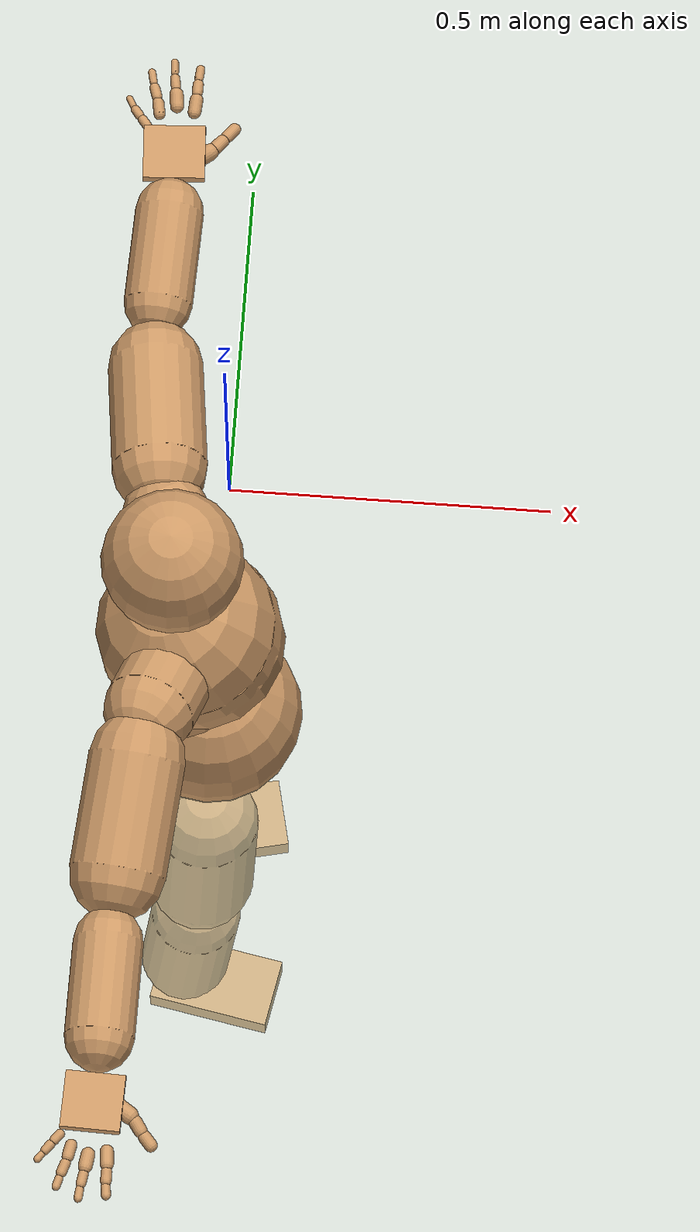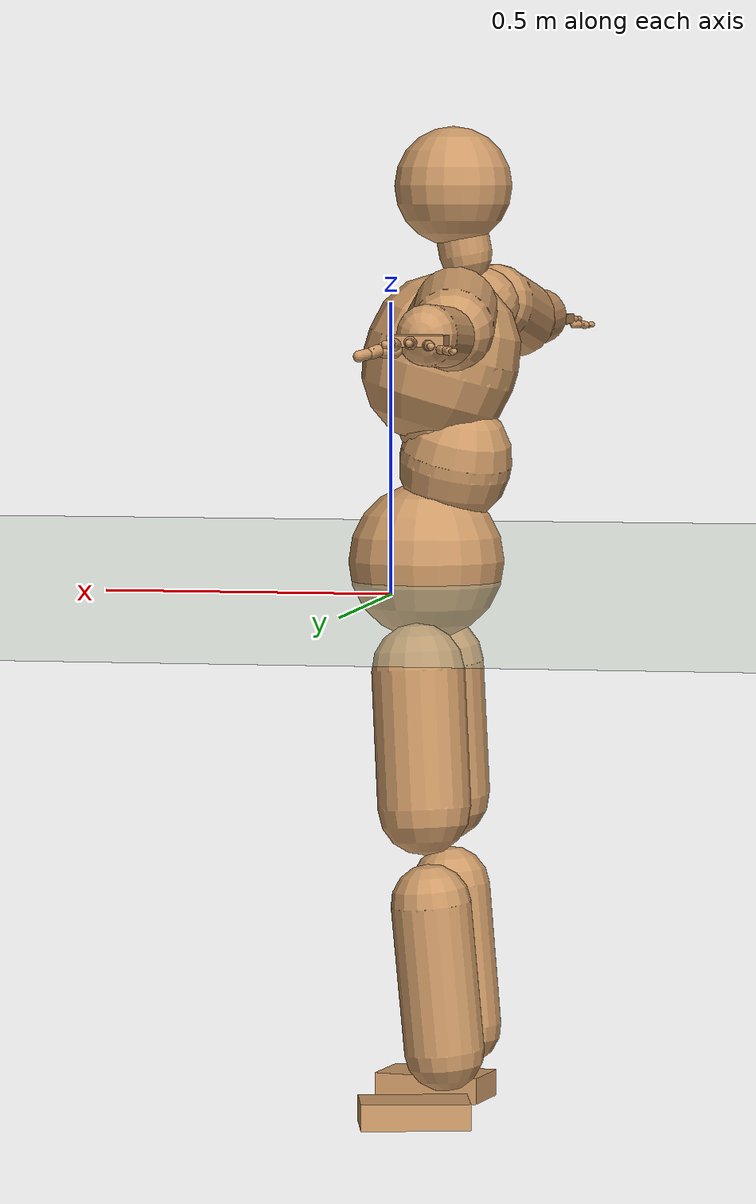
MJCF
<mujoco model="humanoid">
  <compiler coordinate="local" angle="radian"/>
  <default>
    <joint damping="0.0" armature="0.01" stiffness="0.0" limited="true"/>
    <geom conaffinity="1" condim="3" contype="7" margin="0.001" rgba="0.8 0.6 .4 1"/>
  </default>
  <asset>
    <texture type="skybox" builtin="gradient" rgb1=".4 .5 .6" rgb2="0 0 0" width="100" height="100"/>
    <texture builtin="flat" height="1278" mark="cross" markrgb="1 1 1" name="texgeom" random="0.01" rgb1="0.8 0.6 0.4" rgb2="0.8 0.6 0.4" type="cube" width="127"/>
    <texture builtin="checker" height="100" name="texplane" rgb1="0 0 0" rgb2="0.8 0.8 0.8" type="2d" width="100"/>
    <material name="MatPlane" reflectance="0.5" shininess="1" specular="1" texrepeat="60 60" texture="texplane"/>
    <material name="geom" texture="texgeom" texuniform="true"/>
  </asset>
  <worldbody>
    <light cutoff="100" diffuse="1 1 1" dir="-0 0 -1.3" directional="true" exponent="1" pos="0 0 1.3" specular=".1 .1 .1"/>
    <geom conaffinity="1" condim="3" name="floor" pos="0 0 0" rgba="0.8 0.9 0.8 1" size="100 100 .2" type="plane" material="MatPlane"/>
    <body name="Pelvis" pos="0.0014 -0.3757 0.0331">
      <freejoint name="Pelvis"/>
      <geom type="sphere" contype="1" conaffinity="1" density="500" size="0.1401" pos="0.0000 0.0000 0.0000" name="Pelvis"/>
      <body name="L_Hip" pos="0.001 0.1056 -0.1034">
        <joint name="L_Hip_x" type="hinge" pos="0 0 0" axis="1 0 0" stiffness="800" damping="80" armature="0.02" range="-180.0000 180.0000"/>
        <joint name="L_Hip_y" type="hinge" pos="0 0 0" axis="0 1 0" stiffness="800" damping="80" armature="0.02" range="-180.0000 180.0000"/>
        <joint name="L_Hip_z" type="hinge" pos="0 0 0" axis="0 0 1" stiffness="800" damping="80" armature="0.02" range="-180.0000 180.0000"/>
        <geom type="capsule" contype="1" conaffinity="1" density="500" fromto="-0.0047 0.0053 -0.0817 -0.0189 0.0211 -0.3266" size="0.0825" name="L_Hip"/>
        <body name="L_Knee" pos="-0.0236 0.0264 -0.4083">
          <joint name="L_Knee_x" type="hinge" pos="0 0 0" axis="1 0 0" stiffness="800" damping="80" armature="0.02" range="-180.0000 180.0000"/>
          <joint name="L_Knee_y" type="hinge" pos="0 0 0" axis="0 1 0" stiffness="800" damping="80" armature="0.02" range="-180.0000 180.0000"/>
          <joint name="L_Knee_z" type="hinge" pos="0 0 0" axis="0 0 1" stiffness="800" damping="80" armature="0.02" range="-180.0000 180.0000"/>
          <geom type="capsule" contype="1" conaffinity="1" density="500" fromto="-0.0077 -0.0025 -0.0875 -0.0310 -0.0099 -0.3502" size="0.0714" name="L_Knee"/>
          <body name="L_Ankle" pos="-0.0387 -0.0124 -0.4377">
            <joint name="L_Ankle_x" type="hinge" pos="0 0 0" axis="1 0 0" stiffness="800" damping="80" armature="0.02" range="-180.0000 180.0000"/>
            <joint name="L_Ankle_y" type="hinge" pos="0 0 0" axis="0 1 0" stiffness="800" damping="80" armature="0.02" range="-180.0000 180.0000"/>
            <joint name="L_Ankle_z" type="hinge" pos="0 0 0" axis="0 0 1" stiffness="800" damping="80" armature="0.02" range="-180.0000 180.0000"/>
            <geom type="box" contype="1" conaffinity="1" density="500" pos="0.0600 0.0135 -0.0230" size="0.0973 0.0555 0.0237" quat="0.9939 0.0000 0.0000 0.1107" name="L_Ankle"/>
            <body name="L_Toe" pos="0.1199 0.0271 -0.046">
              <joint name="L_Toe_x" type="hinge" pos="0 0 0" axis="1 0 0" stiffness="500" damping="50" armature="0.02" range="-180.0000 180.0000"/>
              <joint name="L_Toe_y" type="hinge" pos="0 0 0" axis="0 1 0" stiffness="500" damping="50" armature="0.02" range="-180.0000 180.0000"/>
              <joint name="L_Toe_z" type="hinge" pos="0 0 0" axis="0 0 1" stiffness="500" damping="50" armature="0.02" range="-180.0000 180.0000"/>
              <geom type="box" contype="1" conaffinity="1" density="500" pos="0.0000 0.0000 0.0227" size="0.001 0.0027 0.0012" quat="0.9932 0.0000 0.0000 0.1167" name="L_Toe"/>
            </body>
          </body>
        </body>
      </body>
      <body name="R_Hip" pos="-0.0001 -0.1058 -0.109">
        <joint name="R_Hip_x" type="hinge" pos="0 0 0" axis="1 0 0" stiffness="800" damping="80" armature="0.02" range="-180.0000 180.0000"/>
        <joint name="R_Hip_y" type="hinge" pos="0 0 0" axis="0 1 0" stiffness="800" damping="80" armature="0.02" range="-180.0000 180.0000"/>
        <joint name="R_Hip_z" type="hinge" pos="0 0 0" axis="0 0 1" stiffness="800" damping="80" armature="0.02" range="-180.0000 180.0000"/>
        <geom type="capsule" contype="1" conaffinity="1" density="500" fromto="-0.0031 -0.0064 -0.0811 -0.0123 -0.0255 -0.3242" size="0.0822" name="R_Hip"/>
        <body name="R_Knee" pos="-0.0154 -0.0318 -0.4053">
          <joint name="R_Knee_x" type="hinge" pos="0 0 0" axis="1 0 0" stiffness="800" damping="80" armature="0.02" range="-180.0000 180.0000"/>
          <joint name="R_Knee_y" type="hinge" pos="0 0 0" axis="0 1 0" stiffness="800" damping="80" armature="0.02" range="-180.0000 180.0000"/>
          <joint name="R_Knee_z" type="hinge" pos="0 0 0" axis="0 0 1" stiffness="800" damping="80" armature="0.02" range="-180.0000 180.0000"/>
          <geom type="capsule" contype="1" conaffinity="1" density="500" fromto="-0.0073 0.0012 -0.0856 -0.0293 0.0050 -0.3424" size="0.0714" name="R_Knee"/>
          <body name="R_Ankle" pos="-0.0366 0.0062 -0.428">
            <joint name="R_Ankle_x" type="hinge" pos="0 0 0" axis="1 0 0" stiffness="800" damping="80" armature="0.02" range="-180.0000 180.0000"/>
            <joint name="R_Ankle_y" type="hinge" pos="0 0 0" axis="0 1 0" stiffness="800" damping="80" armature="0.02" range="-180.0000 180.0000"/>
            <joint name="R_Ankle_z" type="hinge" pos="0 0 0" axis="0 0 1" stiffness="800" damping="80" armature="0.02" range="-180.0000 180.0000"/>
            <geom type="box" contype="1" conaffinity="1" density="500" pos="0.0571 -0.0108 -0.0243" size="0.0973 0.0555 0.0237" quat="0.9956 0.0000 0.0000 -0.0935" name="R_Ankle"/>
            <body name="R_Toe" pos="0.1142 -0.0216 -0.0486">
              <joint name="R_Toe_x" type="hinge" pos="0 0 0" axis="1 0 0" stiffness="500" damping="50" armature="0.02" range="-180.0000 180.0000"/>
              <joint name="R_Toe_y" type="hinge" pos="0 0 0" axis="0 1 0" stiffness="500" damping="50" armature="0.02" range="-180.0000 180.0000"/>
              <joint name="R_Toe_z" type="hinge" pos="0 0 0" axis="0 0 1" stiffness="500" damping="50" armature="0.02" range="-180.0000 180.0000"/>
              <geom type="box" contype="1" conaffinity="1" density="500" pos="0.0000 0.0000 0.0240" size="0.001 0.0027 0.0012" quat="0.9965 0.0000 0.0000 -0.0836" name="R_Toe"/>
            </body>
          </body>
        </body>
      </body>
      <body name="Torso" pos="-0.0408 -0.0084 0.1259">
        <joint name="Torso_x" type="hinge" pos="0 0 0" axis="1 0 0" stiffness="1000" damping="100" armature="0.02" range="-180.0000 180.0000"/>
        <joint name="Torso_y" type="hinge" pos="0 0 0" axis="0 1 0" stiffness="1000" damping="100" armature="0.02" range="-180.0000 180.0000"/>
        <joint name="Torso_z" type="hinge" pos="0 0 0" axis="0 0 1" stiffness="1000" damping="100" armature="0.02" range="-180.0000 180.0000"/>
        <geom type="capsule" contype="1" conaffinity="1" density="500" fromto="-0.0138 0.0121 0.0616 -0.0092 0.0080 0.0411" size="0.0997" name="Torso"/>
        <body name="Spine" pos="-0.023 0.0201 0.1027">
          <joint name="Spine_x" type="hinge" pos="0 0 0" axis="1 0 0" stiffness="1000" damping="100" armature="0.02" range="-180.0000 180.0000"/>
          <joint name="Spine_y" type="hinge" pos="0 0 0" axis="0 1 0" stiffness="1000" damping="100" armature="0.02" range="-180.0000 180.0000"/>
          <joint name="Spine_z" type="hinge" pos="0 0 0" axis="0 0 1" stiffness="1000" damping="100" armature="0.02" range="-180.0000 180.0000"/>
          <geom type="capsule" contype="1" conaffinity="1" density="500" fromto="0.0381 -0.0076 0.0259 0.0254 -0.0051 0.0173" size="0.0805" name="Spine"/>
          <body name="Chest" pos="0.0635 -0.0127 0.0432">
            <joint name="Chest_x" type="hinge" pos="0 0 0" axis="1 0 0" stiffness="1000" damping="100" armature="0.02" range="-180.0000 180.0000"/>
            <joint name="Chest_y" type="hinge" pos="0 0 0" axis="0 1 0" stiffness="1000" damping="100" armature="0.02" range="-180.0000 180.0000"/>
            <joint name="Chest_z" type="hinge" pos="0 0 0" axis="0 0 1" stiffness="1000" damping="100" armature="0.02" range="-180.0000 180.0000"/>
            <geom type="capsule" contype="1" conaffinity="1" density="500" fromto="-0.0305 -0.0020 0.1041 -0.0203 -0.0013 0.0694" size="0.1376" name="Chest"/>
            <body name="Neck" pos="-0.0739 -0.0073 0.243">
              <joint name="Neck_x" type="hinge" pos="0 0 0" axis="1 0 0" stiffness="500" damping="50" armature="0.02" range="-180.0000 180.0000"/>
              <joint name="Neck_y" type="hinge" pos="0 0 0" axis="0 1 0" stiffness="500" damping="50" armature="0.02" range="-180.0000 180.0000"/>
              <joint name="Neck_z" type="hinge" pos="0 0 0" axis="0 0 1" stiffness="500" damping="50" armature="0.02" range="-180.0000 180.0000"/>
              <geom type="capsule" contype="1" conaffinity="1" density="500" fromto="0.0053 0.0020 0.0303 0.0212 0.0081 0.1210" size="0.0473" name="Neck"/>
              <body name="Head" pos="0.0265 0.0101 0.1513">
                <joint name="Head_x" type="hinge" pos="0 0 0" axis="1 0 0" stiffness="500" damping="50" armature="0.02" range="-180.0000 180.0000"/>
                <joint name="Head_y" type="hinge" pos="0 0 0" axis="0 1 0" stiffness="500" damping="50" armature="0.02" range="-180.0000 180.0000"/>
                <joint name="Head_z" type="hinge" pos="0 0 0" axis="0 0 1" stiffness="500" damping="50" armature="0.02" range="-180.0000 180.0000"/>
                <geom type="sphere" contype="1" conaffinity="1" density="500" size="0.1053" pos="0.0000 0.0000 0.0000" name="Head"/>
              </body>
            </body>
            <body name="L_Thorax" pos="-0.0343 0.0655 0.1415">
              <joint name="L_Thorax_x" type="hinge" pos="0 0 0" axis="1 0 0" stiffness="500" damping="50" armature="0.02" range="-180.0000 180.0000"/>
              <joint name="L_Thorax_y" type="hinge" pos="0 0 0" axis="0 1 0" stiffness="500" damping="50" armature="0.02" range="-180.0000 180.0000"/>
              <joint name="L_Thorax_z" type="hinge" pos="0 0 0" axis="0 0 1" stiffness="500" damping="50" armature="0.02" range="-180.0000 180.0000"/>
              <geom type="capsule" contype="1" conaffinity="1" density="500" fromto="-0.0093 0.0201 0.0108 -0.0373 0.0805 0.0433" size="0.0676" name="L_Thorax"/>
              <body name="L_Shoulder" pos="-0.0467 0.1006 0.0541">
                <joint name="L_Shoulder_x" type="hinge" pos="0 0 0" axis="1 0 0" stiffness="500" damping="50" armature="0.02" range="-180.0000 180.0000"/>
                <joint name="L_Shoulder_y" type="hinge" pos="0 0 0" axis="0 1 0" stiffness="500" damping="50" armature="0.02" range="-180.0000 180.0000"/>
                <joint name="L_Shoulder_z" type="hinge" pos="0 0 0" axis="0 0 1" stiffness="500" damping="50" armature="0.02" range="-180.0000 180.0000"/>
                <geom type="capsule" contype="1" conaffinity="1" density="500" fromto="-0.0068 0.0574 -0.0113 -0.0273 0.2298 -0.0452" size="0.072" name="L_Shoulder"/>
                <body name="L_Elbow" pos="-0.0342 0.2872 -0.0565">
                  <joint name="L_Elbow_x" type="hinge" pos="0 0 0" axis="1 0 0" stiffness="500" damping="50" armature="0.02" range="-720.0000 720.0000"/>
                  <joint name="L_Elbow_y" type="hinge" pos="0 0 0" axis="0 1 0" stiffness="500" damping="50" armature="0.02" range="-720.0000 720.0000"/>
                  <joint name="L_Elbow_z" type="hinge" pos="0 0 0" axis="0 0 1" stiffness="500" damping="50" armature="0.02" range="-720.0000 720.0000"/>
                  <geom type="capsule" contype="1" conaffinity="1" density="500" fromto="0.0020 0.0493 0.0024 0.0078 0.1971 0.0094" size="0.0518" name="L_Elbow"/>
                  <body name="L_Wrist" pos="0.0098 0.2464 0.0118">
                    <joint name="L_Wrist_x" type="hinge" pos="0 0 0" axis="1 0 0" stiffness="300" damping="30" armature="0.02" range="-180.0000 180.0000"/>
                    <joint name="L_Wrist_y" type="hinge" pos="0 0 0" axis="0 1 0" stiffness="300" damping="30" armature="0.02" range="-180.0000 180.0000"/>
                    <joint name="L_Wrist_z" type="hinge" pos="0 0 0" axis="0 0 1" stiffness="300" damping="30" armature="0.02" range="-180.0000 180.0000"/>
                    <geom type="box" contype="1" conaffinity="1" density="500" pos="-0.0026 0.0485 -0.0086" size="0.0428 0.0469 0.0087" quat="0.7259 0.0000 0.0000 -0.6878" name="L_Wrist"/>
                    <body name="L_Index1" pos="0.0219 0.1138 -0.0141">
                      <joint name="L_Index1_x" type="hinge" pos="0 0 0" axis="1 0 0" stiffness="100" damping="10" armature="0.02" range="-180.0000 180.0000"/>
                      <joint name="L_Index1_y" type="hinge" pos="0 0 0" axis="0 1 0" stiffness="100" damping="10" armature="0.02" range="-180.0000 180.0000"/>
                      <joint name="L_Index1_z" type="hinge" pos="0 0 0" axis="0 0 1" stiffness="100" damping="10" armature="0.02" range="-180.0000 180.0000"/>
                      <geom type="capsule" contype="1" conaffinity="1" density="500" fromto="0.0005 0.0067 0.0007 0.0021 0.0266 0.0029" size="0.0101" name="L_Index1"/>
                      <body name="L_Index2" pos="0.0026 0.0333 0.0037">
                        <joint name="L_Index2_x" type="hinge" pos="0 0 0" axis="1 0 0" stiffness="100" damping="10" armature="0.02" range="-180.0000 180.0000"/>
                        <joint name="L_Index2_y" type="hinge" pos="0 0 0" axis="0 1 0" stiffness="100" damping="10" armature="0.02" range="-180.0000 180.0000"/>
                        <joint name="L_Index2_z" type="hinge" pos="0 0 0" axis="0 0 1" stiffness="100" damping="10" armature="0.02" range="-180.0000 180.0000"/>
                        <geom type="capsule" contype="1" conaffinity="1" density="500" fromto="0.0000 0.0047 -0.0003 0.0002 0.0186 -0.0010" size="0.0082" name="L_Index2"/>
                        <body name="L_Index3" pos="0.0002 0.0233 -0.0013">
                          <joint name="L_Index3_x" type="hinge" pos="0 0 0" axis="1 0 0" stiffness="100" damping="10" armature="0.02" range="-180.0000 180.0000"/>
                          <joint name="L_Index3_y" type="hinge" pos="0 0 0" axis="0 1 0" stiffness="100" damping="10" armature="0.02" range="-180.0000 180.0000"/>
                          <joint name="L_Index3_z" type="hinge" pos="0 0 0" axis="0 0 1" stiffness="100" damping="10" armature="0.02" range="-180.0000 180.0000"/>
                          <geom type="capsule" contype="1" conaffinity="1" density="500" fromto="0.0004 0.0051 0.0001 0.0018 0.0202 0.0006" size="0.0067" name="L_Index3"/>
                        </body>
                      </body>
                    </body>
                    <body name="L_Middle1" pos="-0.0037 0.1215 -0.011">
                      <joint name="L_Middle1_x" type="hinge" pos="0 0 0" axis="1 0 0" stiffness="100" damping="10" armature="0.02" range="-180.0000 180.0000"/>
                      <joint name="L_Middle1_y" type="hinge" pos="0 0 0" axis="0 1 0" stiffness="100" damping="10" armature="0.02" range="-180.0000 180.0000"/>
                      <joint name="L_Middle1_z" type="hinge" pos="0 0 0" axis="0 0 1" stiffness="100" damping="10" armature="0.02" range="-180.0000 180.0000"/>
                      <geom type="capsule" contype="1" conaffinity="1" density="500" fromto="-0.0008 0.0063 0.0004 -0.0033 0.0252 0.0017" size="0.0105" name="L_Middle1"/>
                      <body name="L_Middle2" pos="-0.0041 0.0315 0.0021">
                        <joint name="L_Middle2_x" type="hinge" pos="0 0 0" axis="1 0 0" stiffness="100" damping="10" armature="0.02" range="-180.0000 180.0000"/>
                        <joint name="L_Middle2_y" type="hinge" pos="0 0 0" axis="0 1 0" stiffness="100" damping="10" armature="0.02" range="-180.0000 180.0000"/>
                        <joint name="L_Middle2_z" type="hinge" pos="0 0 0" axis="0 0 1" stiffness="100" damping="10" armature="0.02" range="-180.0000 180.0000"/>
                        <geom type="capsule" contype="1" conaffinity="1" density="500" fromto="-0.0008 0.0048 -0.0001 -0.0032 0.0193 -0.0006" size="0.0075" name="L_Middle2"/>
                        <body name="L_Middle3" pos="-0.004 0.0242 -0.0007">
                          <joint name="L_Middle3_x" type="hinge" pos="0 0 0" axis="1 0 0" stiffness="100" damping="10" armature="0.02" range="-180.0000 180.0000"/>
                          <joint name="L_Middle3_y" type="hinge" pos="0 0 0" axis="0 1 0" stiffness="100" damping="10" armature="0.02" range="-180.0000 180.0000"/>
                          <joint name="L_Middle3_z" type="hinge" pos="0 0 0" axis="0 0 1" stiffness="100" damping="10" armature="0.02" range="-180.0000 180.0000"/>
                          <geom type="capsule" contype="1" conaffinity="1" density="500" fromto="-0.0004 0.0052 0.0003 -0.0016 0.0209 0.0010" size="0.006" name="L_Middle3"/>
                        </body>
                      </body>
                    </body>
                    <body name="L_Pinky1" pos="-0.0457 0.0941 -0.0213">
                      <joint name="L_Pinky1_x" type="hinge" pos="0 0 0" axis="1 0 0" stiffness="100" damping="10" armature="0.02" range="-180.0000 180.0000"/>
                      <joint name="L_Pinky1_y" type="hinge" pos="0 0 0" axis="0 1 0" stiffness="100" damping="10" armature="0.02" range="-180.0000 180.0000"/>
                      <joint name="L_Pinky1_z" type="hinge" pos="0 0 0" axis="0 0 1" stiffness="100" damping="10" armature="0.02" range="-180.0000 180.0000"/>
                      <geom type="capsule" contype="1" conaffinity="1" density="500" fromto="-0.0025 0.0031 -0.0002 -0.0100 0.0126 -0.0007" size="0.0073" name="L_Pinky1"/>
                      <body name="L_Pinky2" pos="-0.0125 0.0157 -0.0008">
                        <joint name="L_Pinky2_x" type="hinge" pos="0 0 0" axis="1 0 0" stiffness="100" damping="10" armature="0.02" range="-180.0000 180.0000"/>
                        <joint name="L_Pinky2_y" type="hinge" pos="0 0 0" axis="0 1 0" stiffness="100" damping="10" armature="0.02" range="-180.0000 180.0000"/>
                        <joint name="L_Pinky2_z" type="hinge" pos="0 0 0" axis="0 0 1" stiffness="100" damping="10" armature="0.02" range="-180.0000 180.0000"/>
                        <geom type="capsule" contype="1" conaffinity="1" density="500" fromto="-0.0024 0.0032 -0.0003 -0.0095 0.0127 -0.0011" size="0.007" name="L_Pinky2"/>
                        <body name="L_Pinky3" pos="-0.0118 0.0158 -0.0014">
                          <joint name="L_Pinky3_x" type="hinge" pos="0 0 0" axis="1 0 0" stiffness="100" damping="10" armature="0.02" range="-180.0000 180.0000"/>
                          <joint name="L_Pinky3_y" type="hinge" pos="0 0 0" axis="0 1 0" stiffness="100" damping="10" armature="0.02" range="-180.0000 180.0000"/>
                          <joint name="L_Pinky3_z" type="hinge" pos="0 0 0" axis="0 0 1" stiffness="100" damping="10" armature="0.02" range="-180.0000 180.0000"/>
                          <geom type="capsule" contype="1" conaffinity="1" density="500" fromto="-0.0020 0.0036 0.0001 -0.0079 0.0143 0.0005" size="0.0051" name="L_Pinky3"/>
                        </body>
                      </body>
                    </body>
                    <body name="L_Ring1" pos="-0.0291 0.1087 -0.0149">
                      <joint name="L_Ring1_x" type="hinge" pos="0 0 0" axis="1 0 0" stiffness="100" damping="10" armature="0.02" range="-180.0000 180.0000"/>
                      <joint name="L_Ring1_y" type="hinge" pos="0 0 0" axis="0 1 0" stiffness="100" damping="10" armature="0.02" range="-180.0000 180.0000"/>
                      <joint name="L_Ring1_z" type="hinge" pos="0 0 0" axis="0 0 1" stiffness="100" damping="10" armature="0.02" range="-180.0000 180.0000"/>
                      <geom type="capsule" contype="1" conaffinity="1" density="500" fromto="-0.0012 0.0058 0.0004 -0.0046 0.0234 0.0016" size="0.0089" name="L_Ring1"/>
                      <body name="L_Ring2" pos="-0.0058 0.0292 0.002">
                        <joint name="L_Ring2_x" type="hinge" pos="0 0 0" axis="1 0 0" stiffness="100" damping="10" armature="0.02" range="-180.0000 180.0000"/>
                        <joint name="L_Ring2_y" type="hinge" pos="0 0 0" axis="0 1 0" stiffness="100" damping="10" armature="0.02" range="-180.0000 180.0000"/>
                        <joint name="L_Ring2_z" type="hinge" pos="0 0 0" axis="0 0 1" stiffness="100" damping="10" armature="0.02" range="-180.0000 180.0000"/>
                        <geom type="capsule" contype="1" conaffinity="1" density="500" fromto="-0.0015 0.0047 -0.0003 -0.0061 0.0187 -0.0011" size="0.0079" name="L_Ring2"/>
                        <body name="L_Ring3" pos="-0.0076 0.0234 -0.0013">
                          <joint name="L_Ring3_x" type="hinge" pos="0 0 0" axis="1 0 0" stiffness="100" damping="10" armature="0.02" range="-180.0000 180.0000"/>
                          <joint name="L_Ring3_y" type="hinge" pos="0 0 0" axis="0 1 0" stiffness="100" damping="10" armature="0.02" range="-180.0000 180.0000"/>
                          <joint name="L_Ring3_z" type="hinge" pos="0 0 0" axis="0 0 1" stiffness="100" damping="10" armature="0.02" range="-180.0000 180.0000"/>
                          <geom type="capsule" contype="1" conaffinity="1" density="500" fromto="-0.0011 0.0051 0.0001 -0.0045 0.0203 0.0005" size="0.0059" name="L_Ring3"/>
                        </body>
                      </body>
                    </body>
                    <body name="L_Thumb1" pos="0.0304 0.047 -0.0251">
                      <joint name="L_Thumb1_x" type="hinge" pos="0 0 0" axis="1 0 0" stiffness="100" damping="10" armature="0.02" range="-180.0000 180.0000"/>
                      <joint name="L_Thumb1_y" type="hinge" pos="0 0 0" axis="0 1 0" stiffness="100" damping="10" armature="0.02" range="-180.0000 180.0000"/>
                      <joint name="L_Thumb1_z" type="hinge" pos="0 0 0" axis="0 0 1" stiffness="100" damping="10" armature="0.02" range="-180.0000 180.0000"/>
                      <geom type="capsule" contype="1" conaffinity="1" density="500" fromto="0.0051 0.0036 0.0003 0.0203 0.0143 0.0013" size="0.0133" name="L_Thumb1"/>
                      <body name="L_Thumb2" pos="0.0254 0.0179 0.0017">
                        <joint name="L_Thumb2_x" type="hinge" pos="0 0 0" axis="1 0 0" stiffness="100" damping="10" armature="0.02" range="-180.0000 180.0000"/>
                        <joint name="L_Thumb2_y" type="hinge" pos="0 0 0" axis="0 1 0" stiffness="100" damping="10" armature="0.02" range="-180.0000 180.0000"/>
                        <joint name="L_Thumb2_z" type="hinge" pos="0 0 0" axis="0 0 1" stiffness="100" damping="10" armature="0.02" range="-180.0000 180.0000"/>
                        <geom type="capsule" contype="1" conaffinity="1" density="500" fromto="0.0030 0.0043 -0.0012 0.0121 0.0171 -0.0050" size="0.0103" name="L_Thumb2"/>
                        <body name="L_Thumb3" pos="0.0152 0.0213 -0.0062">
                          <joint name="L_Thumb3_x" type="hinge" pos="0 0 0" axis="1 0 0" stiffness="100" damping="10" armature="0.02" range="-180.0000 180.0000"/>
                          <joint name="L_Thumb3_y" type="hinge" pos="0 0 0" axis="0 1 0" stiffness="100" damping="10" armature="0.02" range="-180.0000 180.0000"/>
                          <joint name="L_Thumb3_z" type="hinge" pos="0 0 0" axis="0 0 1" stiffness="100" damping="10" armature="0.02" range="-180.0000 180.0000"/>
                          <geom type="capsule" contype="1" conaffinity="1" density="500" fromto="0.0034 0.0047 -0.0008 0.0137 0.0187 -0.0034" size="0.0095" name="L_Thumb3"/>
                        </body>
                      </body>
                    </body>
                  </body>
                </body>
              </body>
            </body>
            <body name="R_Thorax" pos="-0.0443 -0.0682 0.1359">
              <joint name="R_Thorax_x" type="hinge" pos="0 0 0" axis="1 0 0" stiffness="500" damping="50" armature="0.02" range="-180.0000 180.0000"/>
              <joint name="R_Thorax_y" type="hinge" pos="0 0 0" axis="0 1 0" stiffness="500" damping="50" armature="0.02" range="-180.0000 180.0000"/>
              <joint name="R_Thorax_z" type="hinge" pos="0 0 0" axis="0 0 1" stiffness="500" damping="50" armature="0.02" range="-180.0000 180.0000"/>
              <geom type="capsule" contype="1" conaffinity="1" density="500" fromto="-0.0071 -0.0220 0.0110 -0.0284 -0.0879 0.0442" size="0.069" name="R_Thorax"/>
              <body name="R_Shoulder" pos="-0.0356 -0.1099 0.0552">
                <joint name="R_Shoulder_x" type="hinge" pos="0 0 0" axis="1 0 0" stiffness="500" damping="50" armature="0.02" range="-180.0000 180.0000"/>
                <joint name="R_Shoulder_y" type="hinge" pos="0 0 0" axis="0 1 0" stiffness="500" damping="50" armature="0.02" range="-180.0000 180.0000"/>
                <joint name="R_Shoulder_z" type="hinge" pos="0 0 0" axis="0 0 1" stiffness="500" damping="50" armature="0.02" range="-180.0000 180.0000"/>
                <geom type="capsule" contype="1" conaffinity="1" density="500" fromto="-0.0053 -0.0556 -0.0098 -0.0210 -0.2225 -0.0393" size="0.0726" name="R_Shoulder"/>
                <body name="R_Elbow" pos="-0.0263 -0.2781 -0.0491">
                  <joint name="R_Elbow_x" type="hinge" pos="0 0 0" axis="1 0 0" stiffness="500" damping="50" armature="0.02" range="-720.0000 720.0000"/>
                  <joint name="R_Elbow_y" type="hinge" pos="0 0 0" axis="0 1 0" stiffness="500" damping="50" armature="0.02" range="-720.0000 720.0000"/>
                  <joint name="R_Elbow_z" type="hinge" pos="0 0 0" axis="0 0 1" stiffness="500" damping="50" armature="0.02" range="-720.0000 720.0000"/>
                  <geom type="capsule" contype="1" conaffinity="1" density="500" fromto="-0.0003 -0.0492 0.0015 -0.0012 -0.1967 0.0062" size="0.0519" name="R_Elbow"/>
                  <body name="R_Wrist" pos="-0.0014 -0.2459 0.0077">
                    <joint name="R_Wrist_x" type="hinge" pos="0 0 0" axis="1 0 0" stiffness="300" damping="30" armature="0.02" range="-180.0000 180.0000"/>
                    <joint name="R_Wrist_y" type="hinge" pos="0 0 0" axis="0 1 0" stiffness="300" damping="30" armature="0.02" range="-180.0000 180.0000"/>
                    <joint name="R_Wrist_z" type="hinge" pos="0 0 0" axis="0 0 1" stiffness="300" damping="30" armature="0.02" range="-180.0000 180.0000"/>
                    <geom type="box" contype="1" conaffinity="1" density="500" pos="-0.0015 -0.0477 -0.0081" size="0.0428 0.044 0.0089" quat="0.7180 0.0000 0.0000 0.6961" name="R_Wrist"/>
                    <body name="R_Index1" pos="0.0242 -0.1122 -0.013">
                      <joint name="R_Index1_x" type="hinge" pos="0 0 0" axis="1 0 0" stiffness="100" damping="10" armature="0.02" range="-180.0000 180.0000"/>
                      <joint name="R_Index1_y" type="hinge" pos="0 0 0" axis="0 1 0" stiffness="100" damping="10" armature="0.02" range="-180.0000 180.0000"/>
                      <joint name="R_Index1_z" type="hinge" pos="0 0 0" axis="0 0 1" stiffness="100" damping="10" armature="0.02" range="-180.0000 180.0000"/>
                      <geom type="capsule" contype="1" conaffinity="1" density="500" fromto="0.0005 -0.0067 0.0007 0.0021 -0.0266 0.0029" size="0.0101" name="R_Index1"/>
                      <body name="R_Index2" pos="0.0026 -0.0333 0.0036">
                        <joint name="R_Index2_x" type="hinge" pos="0 0 0" axis="1 0 0" stiffness="100" damping="10" armature="0.02" range="-180.0000 180.0000"/>
                        <joint name="R_Index2_y" type="hinge" pos="0 0 0" axis="0 1 0" stiffness="100" damping="10" armature="0.02" range="-180.0000 180.0000"/>
                        <joint name="R_Index2_z" type="hinge" pos="0 0 0" axis="0 0 1" stiffness="100" damping="10" armature="0.02" range="-180.0000 180.0000"/>
                        <geom type="capsule" contype="1" conaffinity="1" density="500" fromto="0.0000 -0.0047 -0.0003 0.0002 -0.0186 -0.0010" size="0.0082" name="R_Index2"/>
                        <body name="R_Index3" pos="0.0002 -0.0233 -0.0013">
                          <joint name="R_Index3_x" type="hinge" pos="0 0 0" axis="1 0 0" stiffness="100" damping="10" armature="0.02" range="-180.0000 180.0000"/>
                          <joint name="R_Index3_y" type="hinge" pos="0 0 0" axis="0 1 0" stiffness="100" damping="10" armature="0.02" range="-180.0000 180.0000"/>
                          <joint name="R_Index3_z" type="hinge" pos="0 0 0" axis="0 0 1" stiffness="100" damping="10" armature="0.02" range="-180.0000 180.0000"/>
                          <geom type="capsule" contype="1" conaffinity="1" density="500" fromto="0.0004 -0.0043 0.0001 0.0018 -0.0170 0.0006" size="0.007" name="R_Index3"/>
                        </body>
                      </body>
                    </body>
                    <body name="R_Middle1" pos="-0.0014 -0.12 -0.0099">
                      <joint name="R_Middle1_x" type="hinge" pos="0 0 0" axis="1 0 0" stiffness="100" damping="10" armature="0.02" range="-180.0000 180.0000"/>
                      <joint name="R_Middle1_y" type="hinge" pos="0 0 0" axis="0 1 0" stiffness="100" damping="10" armature="0.02" range="-180.0000 180.0000"/>
                      <joint name="R_Middle1_z" type="hinge" pos="0 0 0" axis="0 0 1" stiffness="100" damping="10" armature="0.02" range="-180.0000 180.0000"/>
                      <geom type="capsule" contype="1" conaffinity="1" density="500" fromto="-0.0008 -0.0063 0.0004 -0.0033 -0.0252 0.0017" size="0.0105" name="R_Middle1"/>
                      <body name="R_Middle2" pos="-0.0041 -0.0315 0.0021">
                        <joint name="R_Middle2_x" type="hinge" pos="0 0 0" axis="1 0 0" stiffness="100" damping="10" armature="0.02" range="-180.0000 180.0000"/>
                        <joint name="R_Middle2_y" type="hinge" pos="0 0 0" axis="0 1 0" stiffness="100" damping="10" armature="0.02" range="-180.0000 180.0000"/>
                        <joint name="R_Middle2_z" type="hinge" pos="0 0 0" axis="0 0 1" stiffness="100" damping="10" armature="0.02" range="-180.0000 180.0000"/>
                        <geom type="capsule" contype="1" conaffinity="1" density="500" fromto="-0.0008 -0.0048 -0.0001 -0.0032 -0.0193 -0.0006" size="0.0075" name="R_Middle2"/>
                        <body name="R_Middle3" pos="-0.004 -0.0242 -0.0007">
                          <joint name="R_Middle3_x" type="hinge" pos="0 0 0" axis="1 0 0" stiffness="100" damping="10" armature="0.02" range="-180.0000 180.0000"/>
                          <joint name="R_Middle3_y" type="hinge" pos="0 0 0" axis="0 1 0" stiffness="100" damping="10" armature="0.02" range="-180.0000 180.0000"/>
                          <joint name="R_Middle3_z" type="hinge" pos="0 0 0" axis="0 0 1" stiffness="100" damping="10" armature="0.02" range="-180.0000 180.0000"/>
                          <geom type="capsule" contype="1" conaffinity="1" density="500" fromto="-0.0004 -0.0044 0.0003 -0.0016 -0.0177 0.0010" size="0.0063" name="R_Middle3"/>
                        </body>
                      </body>
                    </body>
                    <body name="R_Pinky1" pos="-0.0434 -0.0926 -0.0202">
                      <joint name="R_Pinky1_x" type="hinge" pos="0 0 0" axis="1 0 0" stiffness="100" damping="10" armature="0.02" range="-180.0000 180.0000"/>
                      <joint name="R_Pinky1_y" type="hinge" pos="0 0 0" axis="0 1 0" stiffness="100" damping="10" armature="0.02" range="-180.0000 180.0000"/>
                      <joint name="R_Pinky1_z" type="hinge" pos="0 0 0" axis="0 0 1" stiffness="100" damping="10" armature="0.02" range="-180.0000 180.0000"/>
                      <geom type="capsule" contype="1" conaffinity="1" density="500" fromto="-0.0025 -0.0031 -0.0002 -0.0100 -0.0126 -0.0006" size="0.0073" name="R_Pinky1"/>
                      <body name="R_Pinky2" pos="-0.0125 -0.0157 -0.0008">
                        <joint name="R_Pinky2_x" type="hinge" pos="0 0 0" axis="1 0 0" stiffness="100" damping="10" armature="0.02" range="-180.0000 180.0000"/>
                        <joint name="R_Pinky2_y" type="hinge" pos="0 0 0" axis="0 1 0" stiffness="100" damping="10" armature="0.02" range="-180.0000 180.0000"/>
                        <joint name="R_Pinky2_z" type="hinge" pos="0 0 0" axis="0 0 1" stiffness="100" damping="10" armature="0.02" range="-180.0000 180.0000"/>
                        <geom type="capsule" contype="1" conaffinity="1" density="500" fromto="-0.0024 -0.0032 -0.0003 -0.0095 -0.0127 -0.0011" size="0.007" name="R_Pinky2"/>
                        <body name="R_Pinky3" pos="-0.0118 -0.0158 -0.0014">
                          <joint name="R_Pinky3_x" type="hinge" pos="0 0 0" axis="1 0 0" stiffness="100" damping="10" armature="0.02" range="-180.0000 180.0000"/>
                          <joint name="R_Pinky3_y" type="hinge" pos="0 0 0" axis="0 1 0" stiffness="100" damping="10" armature="0.02" range="-180.0000 180.0000"/>
                          <joint name="R_Pinky3_z" type="hinge" pos="0 0 0" axis="0 0 1" stiffness="100" damping="10" armature="0.02" range="-180.0000 180.0000"/>
                          <geom type="capsule" contype="1" conaffinity="1" density="500" fromto="-0.0020 -0.0028 0.0001 -0.0079 -0.0111 0.0005" size="0.0054" name="R_Pinky3"/>
                        </body>
                      </body>
                    </body>
                    <body name="R_Ring1" pos="-0.0268 -0.1071 -0.0138">
                      <joint name="R_Ring1_x" type="hinge" pos="0 0 0" axis="1 0 0" stiffness="100" damping="10" armature="0.02" range="-180.0000 180.0000"/>
                      <joint name="R_Ring1_y" type="hinge" pos="0 0 0" axis="0 1 0" stiffness="100" damping="10" armature="0.02" range="-180.0000 180.0000"/>
                      <joint name="R_Ring1_z" type="hinge" pos="0 0 0" axis="0 0 1" stiffness="100" damping="10" armature="0.02" range="-180.0000 180.0000"/>
                      <geom type="capsule" contype="1" conaffinity="1" density="500" fromto="-0.0012 -0.0058 0.0004 -0.0046 -0.0234 0.0016" size="0.0089" name="R_Ring1"/>
                      <body name="R_Ring2" pos="-0.0058 -0.0292 0.002">
                        <joint name="R_Ring2_x" type="hinge" pos="0 0 0" axis="1 0 0" stiffness="100" damping="10" armature="0.02" range="-180.0000 180.0000"/>
                        <joint name="R_Ring2_y" type="hinge" pos="0 0 0" axis="0 1 0" stiffness="100" damping="10" armature="0.02" range="-180.0000 180.0000"/>
                        <joint name="R_Ring2_z" type="hinge" pos="0 0 0" axis="0 0 1" stiffness="100" damping="10" armature="0.02" range="-180.0000 180.0000"/>
                        <geom type="capsule" contype="1" conaffinity="1" density="500" fromto="-0.0015 -0.0047 -0.0003 -0.0061 -0.0187 -0.0011" size="0.0079" name="R_Ring2"/>
                        <body name="R_Ring3" pos="-0.0076 -0.0234 -0.0013">
                          <joint name="R_Ring3_x" type="hinge" pos="0 0 0" axis="1 0 0" stiffness="100" damping="10" armature="0.02" range="-180.0000 180.0000"/>
                          <joint name="R_Ring3_y" type="hinge" pos="0 0 0" axis="0 1 0" stiffness="100" damping="10" armature="0.02" range="-180.0000 180.0000"/>
                          <joint name="R_Ring3_z" type="hinge" pos="0 0 0" axis="0 0 1" stiffness="100" damping="10" armature="0.02" range="-180.0000 180.0000"/>
                          <geom type="capsule" contype="1" conaffinity="1" density="500" fromto="-0.0011 -0.0043 0.0001 -0.0045 -0.0171 0.0005" size="0.0062" name="R_Ring3"/>
                        </body>
                      </body>
                    </body>
                    <body name="R_Thumb1" pos="0.0327 -0.0455 -0.024">
                      <joint name="R_Thumb1_x" type="hinge" pos="0 0 0" axis="1 0 0" stiffness="100" damping="10" armature="0.02" range="-180.0000 180.0000"/>
                      <joint name="R_Thumb1_y" type="hinge" pos="0 0 0" axis="0 1 0" stiffness="100" damping="10" armature="0.02" range="-180.0000 180.0000"/>
                      <joint name="R_Thumb1_z" type="hinge" pos="0 0 0" axis="0 0 1" stiffness="100" damping="10" armature="0.02" range="-180.0000 180.0000"/>
                      <geom type="capsule" contype="1" conaffinity="1" density="500" fromto="0.0051 -0.0036 0.0003 0.0203 -0.0143 0.0013" size="0.0133" name="R_Thumb1"/>
                      <body name="R_Thumb2" pos="0.0254 -0.0179 0.0017">
                        <joint name="R_Thumb2_x" type="hinge" pos="0 0 0" axis="1 0 0" stiffness="100" damping="10" armature="0.02" range="-180.0000 180.0000"/>
                        <joint name="R_Thumb2_y" type="hinge" pos="0 0 0" axis="0 1 0" stiffness="100" damping="10" armature="0.02" range="-180.0000 180.0000"/>
                        <joint name="R_Thumb2_z" type="hinge" pos="0 0 0" axis="0 0 1" stiffness="100" damping="10" armature="0.02" range="-180.0000 180.0000"/>
                        <geom type="capsule" contype="1" conaffinity="1" density="500" fromto="0.0030 -0.0043 -0.0012 0.0121 -0.0171 -0.0050" size="0.0103" name="R_Thumb2"/>
                        <body name="R_Thumb3" pos="0.0152 -0.0213 -0.0062">
                          <joint name="R_Thumb3_x" type="hinge" pos="0 0 0" axis="1 0 0" stiffness="100" damping="10" armature="0.02" range="-180.0000 180.0000"/>
                          <joint name="R_Thumb3_y" type="hinge" pos="0 0 0" axis="0 1 0" stiffness="100" damping="10" armature="0.02" range="-180.0000 180.0000"/>
                          <joint name="R_Thumb3_z" type="hinge" pos="0 0 0" axis="0 0 1" stiffness="100" damping="10" armature="0.02" range="-180.0000 180.0000"/>
                          <geom type="capsule" contype="1" conaffinity="1" density="500" fromto="0.0034 -0.0039 -0.0008 0.0137 -0.0155 -0.0034" size="0.0098" name="R_Thumb3"/>
                        </body>
                      </body>
                    </body>
                  </body>
                </body>
              </body>
            </body>
          </body>
        </body>
      </body>
    </body>
  </worldbody>
  <actuator>
    <motor name="L_Hip_x" joint="L_Hip_x" gear="500"/>
    <motor name="L_Hip_y" joint="L_Hip_y" gear="500"/>
    <motor name="L_Hip_z" joint="L_Hip_z" gear="500"/>
    <motor name="L_Knee_x" joint="L_Knee_x" gear="500"/>
    <motor name="L_Knee_y" joint="L_Knee_y" gear="500"/>
    <motor name="L_Knee_z" joint="L_Knee_z" gear="500"/>
    <motor name="L_Ankle_x" joint="L_Ankle_x" gear="500"/>
    <motor name="L_Ankle_y" joint="L_Ankle_y" gear="500"/>
    <motor name="L_Ankle_z" joint="L_Ankle_z" gear="500"/>
    <motor name="L_Toe_x" joint="L_Toe_x" gear="500"/>
    <motor name="L_Toe_y" joint="L_Toe_y" gear="500"/>
    <motor name="L_Toe_z" joint="L_Toe_z" gear="500"/>
    <motor name="R_Hip_x" joint="R_Hip_x" gear="500"/>
    <motor name="R_Hip_y" joint="R_Hip_y" gear="500"/>
    <motor name="R_Hip_z" joint="R_Hip_z" gear="500"/>
    <motor name="R_Knee_x" joint="R_Knee_x" gear="500"/>
    <motor name="R_Knee_y" joint="R_Knee_y" gear="500"/>
    <motor name="R_Knee_z" joint="R_Knee_z" gear="500"/>
    <motor name="R_Ankle_x" joint="R_Ankle_x" gear="500"/>
    <motor name="R_Ankle_y" joint="R_Ankle_y" gear="500"/>
    <motor name="R_Ankle_z" joint="R_Ankle_z" gear="500"/>
    <motor name="R_Toe_x" joint="R_Toe_x" gear="500"/>
    <motor name="R_Toe_y" joint="R_Toe_y" gear="500"/>
    <motor name="R_Toe_z" joint="R_Toe_z" gear="500"/>
    <motor name="Torso_x" joint="Torso_x" gear="500"/>
    <motor name="Torso_y" joint="Torso_y" gear="500"/>
    <motor name="Torso_z" joint="Torso_z" gear="500"/>
    <motor name="Spine_x" joint="Spine_x" gear="500"/>
    <motor name="Spine_y" joint="Spine_y" gear="500"/>
    <motor name="Spine_z" joint="Spine_z" gear="500"/>
    <motor name="Chest_x" joint="Chest_x" gear="500"/>
    <motor name="Chest_y" joint="Chest_y" gear="500"/>
    <motor name="Chest_z" joint="Chest_z" gear="500"/>
    <motor name="Neck_x" joint="Neck_x" gear="500"/>
    <motor name="Neck_y" joint="Neck_y" gear="500"/>
    <motor name="Neck_z" joint="Neck_z" gear="500"/>
    <motor name="Head_x" joint="Head_x" gear="500"/>
    <motor name="Head_y" joint="Head_y" gear="500"/>
    <motor name="Head_z" joint="Head_z" gear="500"/>
    <motor name="L_Thorax_x" joint="L_Thorax_x" gear="500"/>
    <motor name="L_Thorax_y" joint="L_Thorax_y" gear="500"/>
    <motor name="L_Thorax_z" joint="L_Thorax_z" gear="500"/>
    <motor name="L_Shoulder_x" joint="L_Shoulder_x" gear="500"/>
    <motor name="L_Shoulder_y" joint="L_Shoulder_y" gear="500"/>
    <motor name="L_Shoulder_z" joint="L_Shoulder_z" gear="500"/>
    <motor name="L_Elbow_x" joint="L_Elbow_x" gear="500"/>
    <motor name="L_Elbow_y" joint="L_Elbow_y" gear="500"/>
    <motor name="L_Elbow_z" joint="L_Elbow_z" gear="500"/>
    <motor name="L_Wrist_x" joint="L_Wrist_x" gear="500"/>
    <motor name="L_Wrist_y" joint="L_Wrist_y" gear="500"/>
    <motor name="L_Wrist_z" joint="L_Wrist_z" gear="500"/>
    <motor name="L_Index1_x" joint="L_Index1_x" gear="500"/>
    <motor name="L_Index1_y" joint="L_Index1_y" gear="500"/>
    <motor name="L_Index1_z" joint="L_Index1_z" gear="500"/>
    <motor name="L_Index2_x" joint="L_Index2_x" gear="500"/>
    <motor name="L_Index2_y" joint="L_Index2_y" gear="500"/>
    <motor name="L_Index2_z" joint="L_Index2_z" gear="500"/>
    <motor name="L_Index3_x" joint="L_Index3_x" gear="500"/>
    <motor name="L_Index3_y" joint="L_Index3_y" gear="500"/>
    <motor name="L_Index3_z" joint="L_Index3_z" gear="500"/>
    <motor name="L_Middle1_x" joint="L_Middle1_x" gear="500"/>
    <motor name="L_Middle1_y" joint="L_Middle1_y" gear="500"/>
    <motor name="L_Middle1_z" joint="L_Middle1_z" gear="500"/>
    <motor name="L_Middle2_x" joint="L_Middle2_x" gear="500"/>
    <motor name="L_Middle2_y" joint="L_Middle2_y" gear="500"/>
    <motor name="L_Middle2_z" joint="L_Middle2_z" gear="500"/>
    <motor name="L_Middle3_x" joint="L_Middle3_x" gear="500"/>
    <motor name="L_Middle3_y" joint="L_Middle3_y" gear="500"/>
    <motor name="L_Middle3_z" joint="L_Middle3_z" gear="500"/>
    <motor name="L_Pinky1_x" joint="L_Pinky1_x" gear="500"/>
    <motor name="L_Pinky1_y" joint="L_Pinky1_y" gear="500"/>
    <motor name="L_Pinky1_z" joint="L_Pinky1_z" gear="500"/>
    <motor name="L_Pinky2_x" joint="L_Pinky2_x" gear="500"/>
    <motor name="L_Pinky2_y" joint="L_Pinky2_y" gear="500"/>
    <motor name="L_Pinky2_z" joint="L_Pinky2_z" gear="500"/>
    <motor name="L_Pinky3_x" joint="L_Pinky3_x" gear="500"/>
    <motor name="L_Pinky3_y" joint="L_Pinky3_y" gear="500"/>
    <motor name="L_Pinky3_z" joint="L_Pinky3_z" gear="500"/>
    <motor name="L_Ring1_x" joint="L_Ring1_x" gear="500"/>
    <motor name="L_Ring1_y" joint="L_Ring1_y" gear="500"/>
    <motor name="L_Ring1_z" joint="L_Ring1_z" gear="500"/>
    <motor name="L_Ring2_x" joint="L_Ring2_x" gear="500"/>
    <motor name="L_Ring2_y" joint="L_Ring2_y" gear="500"/>
    <motor name="L_Ring2_z" joint="L_Ring2_z" gear="500"/>
    <motor name="L_Ring3_x" joint="L_Ring3_x" gear="500"/>
    <motor name="L_Ring3_y" joint="L_Ring3_y" gear="500"/>
    <motor name="L_Ring3_z" joint="L_Ring3_z" gear="500"/>
    <motor name="L_Thumb1_x" joint="L_Thumb1_x" gear="500"/>
    <motor name="L_Thumb1_y" joint="L_Thumb1_y" gear="500"/>
    <motor name="L_Thumb1_z" joint="L_Thumb1_z" gear="500"/>
    <motor name="L_Thumb2_x" joint="L_Thumb2_x" gear="500"/>
    <motor name="L_Thumb2_y" joint="L_Thumb2_y" gear="500"/>
    <motor name="L_Thumb2_z" joint="L_Thumb2_z" gear="500"/>
    <motor name="L_Thumb3_x" joint="L_Thumb3_x" gear="500"/>
    <motor name="L_Thumb3_y" joint="L_Thumb3_y" gear="500"/>
    <motor name="L_Thumb3_z" joint="L_Thumb3_z" gear="500"/>
    <motor name="R_Thorax_x" joint="R_Thorax_x" gear="500"/>
    <motor name="R_Thorax_y" joint="R_Thorax_y" gear="500"/>
    <motor name="R_Thorax_z" joint="R_Thorax_z" gear="500"/>
    <motor name="R_Shoulder_x" joint="R_Shoulder_x" gear="500"/>
    <motor name="R_Shoulder_y" joint="R_Shoulder_y" gear="500"/>
    <motor name="R_Shoulder_z" joint="R_Shoulder_z" gear="500"/>
    <motor name="R_Elbow_x" joint="R_Elbow_x" gear="500"/>
    <motor name="R_Elbow_y" joint="R_Elbow_y" gear="500"/>
    <motor name="R_Elbow_z" joint="R_Elbow_z" gear="500"/>
    <motor name="R_Wrist_x" joint="R_Wrist_x" gear="500"/>
    <motor name="R_Wrist_y" joint="R_Wrist_y" gear="500"/>
    <motor name="R_Wrist_z" joint="R_Wrist_z" gear="500"/>
    <motor name="R_Index1_x" joint="R_Index1_x" gear="500"/>
    <motor name="R_Index1_y" joint="R_Index1_y" gear="500"/>
    <motor name="R_Index1_z" joint="R_Index1_z" gear="500"/>
    <motor name="R_Index2_x" joint="R_Index2_x" gear="500"/>
    <motor name="R_Index2_y" joint="R_Index2_y" gear="500"/>
    <motor name="R_Index2_z" joint="R_Index2_z" gear="500"/>
    <motor name="R_Index3_x" joint="R_Index3_x" gear="500"/>
    <motor name="R_Index3_y" joint="R_Index3_y" gear="500"/>
    <motor name="R_Index3_z" joint="R_Index3_z" gear="500"/>
    <motor name="R_Middle1_x" joint="R_Middle1_x" gear="500"/>
    <motor name="R_Middle1_y" joint="R_Middle1_y" gear="500"/>
    <motor name="R_Middle1_z" joint="R_Middle1_z" gear="500"/>
    <motor name="R_Middle2_x" joint="R_Middle2_x" gear="500"/>
    <motor name="R_Middle2_y" joint="R_Middle2_y" gear="500"/>
    <motor name="R_Middle2_z" joint="R_Middle2_z" gear="500"/>
    <motor name="R_Middle3_x" joint="R_Middle3_x" gear="500"/>
    <motor name="R_Middle3_y" joint="R_Middle3_y" gear="500"/>
    <motor name="R_Middle3_z" joint="R_Middle3_z" gear="500"/>
    <motor name="R_Pinky1_x" joint="R_Pinky1_x" gear="500"/>
    <motor name="R_Pinky1_y" joint="R_Pinky1_y" gear="500"/>
    <motor name="R_Pinky1_z" joint="R_Pinky1_z" gear="500"/>
    <motor name="R_Pinky2_x" joint="R_Pinky2_x" gear="500"/>
    <motor name="R_Pinky2_y" joint="R_Pinky2_y" gear="500"/>
    <motor name="R_Pinky2_z" joint="R_Pinky2_z" gear="500"/>
    <motor name="R_Pinky3_x" joint="R_Pinky3_x" gear="500"/>
    <motor name="R_Pinky3_y" joint="R_Pinky3_y" gear="500"/>
    <motor name="R_Pinky3_z" joint="R_Pinky3_z" gear="500"/>
    <motor name="R_Ring1_x" joint="R_Ring1_x" gear="500"/>
    <motor name="R_Ring1_y" joint="R_Ring1_y" gear="500"/>
    <motor name="R_Ring1_z" joint="R_Ring1_z" gear="500"/>
    <motor name="R_Ring2_x" joint="R_Ring2_x" gear="500"/>
    <motor name="R_Ring2_y" joint="R_Ring2_y" gear="500"/>
    <motor name="R_Ring2_z" joint="R_Ring2_z" gear="500"/>
    <motor name="R_Ring3_x" joint="R_Ring3_x" gear="500"/>
    <motor name="R_Ring3_y" joint="R_Ring3_y" gear="500"/>
    <motor name="R_Ring3_z" joint="R_Ring3_z" gear="500"/>
    <motor name="R_Thumb1_x" joint="R_Thumb1_x" gear="500"/>
    <motor name="R_Thumb1_y" joint="R_Thumb1_y" gear="500"/>
    <motor name="R_Thumb1_z" joint="R_Thumb1_z" gear="500"/>
    <motor name="R_Thumb2_x" joint="R_Thumb2_x" gear="500"/>
    <motor name="R_Thumb2_y" joint="R_Thumb2_y" gear="500"/>
    <motor name="R_Thumb2_z" joint="R_Thumb2_z" gear="500"/>
    <motor name="R_Thumb3_x" joint="R_Thumb3_x" gear="500"/>
    <motor name="R_Thumb3_y" joint="R_Thumb3_y" gear="500"/>
    <motor name="R_Thumb3_z" joint="R_Thumb3_z" gear="500"/>
  </actuator>
  <contact>
    <exclude body1="Torso" body2="Chest"/>
    <exclude body1="Head" body2="Chest"/>
    <exclude body1="R_Knee" body2="R_Toe"/>
    <exclude body1="R_Knee" body2="L_Ankle"/>
    <exclude body1="R_Knee" body2="L_Toe"/>
    <exclude body1="L_Knee" body2="L_Toe"/>
    <exclude body1="L_Knee" body2="R_Ankle"/>
    <exclude body1="L_Knee" body2="R_Toe"/>
    <exclude body1="L_Shoulder" body2="Chest"/>
    <exclude body1="R_Shoulder" body2="Chest"/>
  </contact>
  <sensor/>
  <size njmax="700" nconmax="700"/>
</mujoco>
